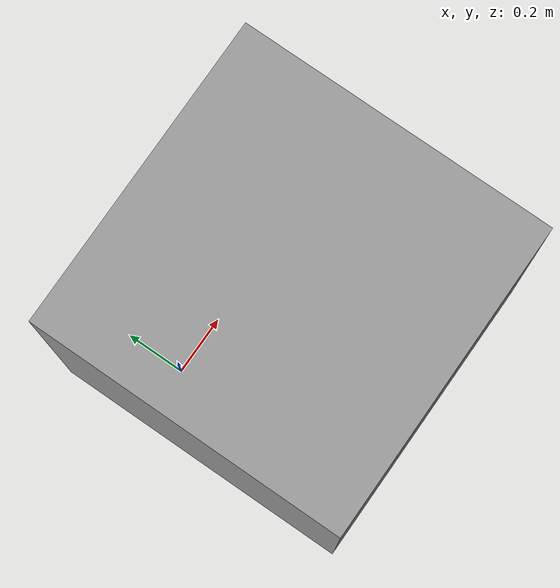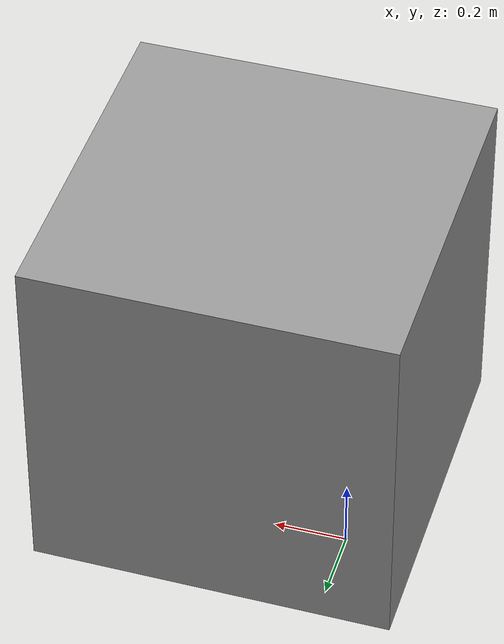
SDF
<sdf version='1.6'>
  <world name='default'>

    <model name='unit_box'>
      <pose frame=''>0.29967 -0.215543 0.5 0 -0 0</pose>
      <link name='link_of_nice_box'>
        <inertial>
          <mass>1</mass>
          <inertia>
            <ixx>0.166667</ixx>
            <ixy>0</ixy>
            <ixz>0</ixz>
            <iyy>0.166667</iyy>
            <iyz>0</iyz>
            <izz>0.166667</izz>
          </inertia>
          <pose frame=''>0 0 0 0 -0 0</pose>
        </inertial>
        <collision name='collision'>
          <geometry>
            <box>
              <size>1 1 1</size>
            </box>
          </geometry>
          <max_contacts>10</max_contacts>
          <surface>
            <contact>
              <ode/>
            </contact>
            <bounce/>
            <friction>
              <torsional>
                <ode/>
              </torsional>
              <ode/>
            </friction>
          </surface>
        </collision>
        <visual name='visual'>
          <geometry>
            <box>
              <size>1 1 1</size>
            </box>
          </geometry>
          <material>
            <script>
              <name>Gazebo/Grey</name>
              <uri>file://media/materials/scripts/gazebo.material</uri>
            </script>
          </material>
        </visual>
        <self_collide>0</self_collide>
        <enable_wind>0</enable_wind>
        <kinematic>0</kinematic>
      </link>
    </model>

  <gazebo reference="link_of_nice_box">
    <gravity>true</gravity>
    <sensor name="imu_sensor" type="imu">
      <always_on>true</always_on>
      <update_rate>100</update_rate>
      <visualize>true</visualize>
      <topic>__default_topic__</topic>
      <plugin filename="libgazebo_ros_imu_sensor.so" name="imu_plugin">
        <topicName>imu</topicName>
        <bodyName>imu_link</bodyName>
        <updateRateHZ>10.0</updateRateHZ>
        <gaussianNoise>0.0</gaussianNoise>
        <xyzOffset>0 0 0</xyzOffset>
        <rpyOffset>0 0 0</rpyOffset>
        <frameName>imu_link</frameName>
      </plugin>
      <pose>0 0 0 0 0 0</pose>
    </sensor>
  </gazebo>

  </world>
</sdf>
